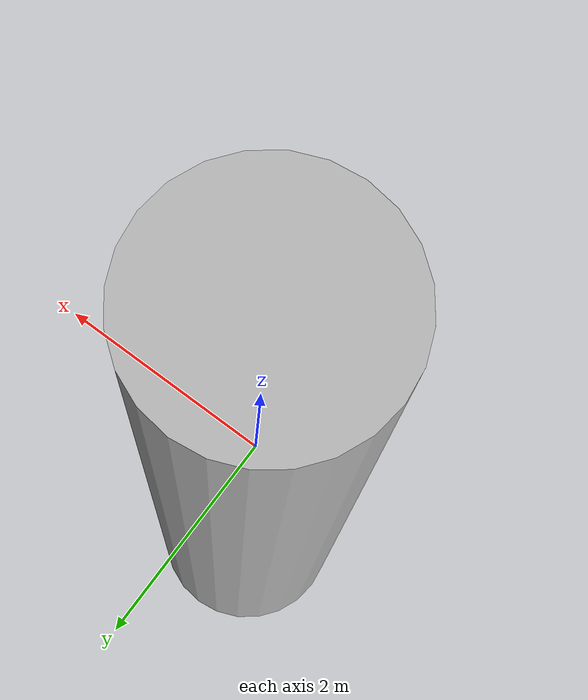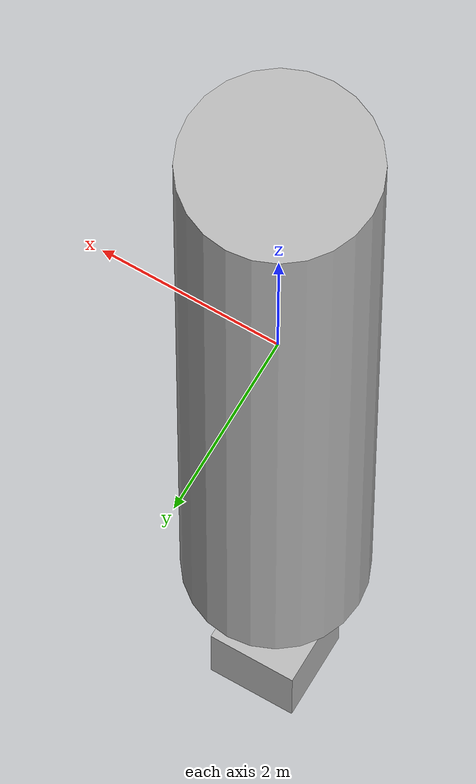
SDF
<sdf version='1.10'>
  <world name='world0'>
    <gravity>0 0 0</gravity>
    <magnetic_field>5.5644999999999998e-06 2.2875799999999999e-05 -4.2388400000000002e-05</magnetic_field>
    <wind>
      <linear_velocity>0 0 0</linear_velocity>
    </wind>
    <physics name='1ms' default='false' type='ignored'>
      <max_step_size>0.001</max_step_size>
      <real_time_factor>1</real_time_factor>
      <max_contacts>20</max_contacts>
    </physics>
    <gui fullscreen="0">
      <plugin filename="MinimalScene" name="3D View">
        <gz-gui>
          <title>3D View</title>
          <property type="bool" key="showTitleBar">false</property>
          <property type="string" key="state">docked</property>
        </gz-gui>

        <engine>ogre</engine>
        <scene>scene</scene>
        <ambient_light>0 0 0</ambient_light>
        <background_color>0.8 0.8 0.8</background_color>
        <camera_pose>-11.526359 19.527456 24.174088 0 0.559400 -0.989541</camera_pose>
      </plugin>

      <!-- Plugins that add functionality to the scene -->
      <plugin filename="CameraTracking" name="Camera Tracking">
        <gz-gui>
          <property key="resizable" type="bool">false</property>
          <property key="width" type="double">5</property>
          <property key="height" type="double">5</property>
          <property key="state" type="string">floating</property>
          <property key="showTitleBar" type="bool">false</property>
        </gz-gui>
      </plugin>
    </gui>
    <model name='model'>
      <static>false</static>
      <self_collide>false</self_collide>
      <allow_auto_disable>true</allow_auto_disable>
      <enable_wind>false</enable_wind>
      <pose>0 0 0 0 0 0</pose>
      <link name='root'>
        <pose>0 0 -0.72727272727272729 0 0 0</pose>
        <inertial>
          <pose>0 0 0 0 0 0</pose>
          <mass>1</mass>
          <inertia>
            <ixx>1</ixx>
            <ixy>0</ixy>
            <ixz>0</ixz>
            <iyy>1</iyy>
            <iyz>0</iyz>
            <izz>1</izz>
          </inertia>
        </inertial>
        <enable_wind>false</enable_wind>
        <visual name='visual_box'>
          <pose>0 0 0 0 0 0</pose>
          <geometry>
            <cylinder>
              <radius>1</radius>
              <length>10</length>
            </cylinder>
          </geometry>
          <cast_shadows>true</cast_shadows>
          <laser_retro>0</laser_retro>
          <transparency>0</transparency>
          <visibility_flags>4294967295</visibility_flags>
        </visual>
      </link>
      <link name='root.RigidBodyLinkType.RIGID_SolidSpecType.BOX'>
        <pose>0 0 -8 0 0 0</pose>
        <inertial>
          <pose>0 0 0 0 0 0</pose>
          <mass>1</mass>
          <inertia>
            <ixx>1</ixx>
            <ixy>0</ixy>
            <ixz>0</ixz>
            <iyy>1</iyy>
            <iyz>0</iyz>
            <izz>1</izz>
          </inertia>
        </inertial>
        <enable_wind>false</enable_wind>
        <visual name='visual_box'>
          <pose>0 0 0 0 0 0</pose>
          <geometry>
            <box>
              <size>1 1 1</size>
            </box>
          </geometry>
          <cast_shadows>true</cast_shadows>
          <laser_retro>0</laser_retro>
          <transparency>0</transparency>
          <visibility_flags>4294967295</visibility_flags>
        </visual>
      </link>
      <joint name='joint' type='fixed'>
        <parent>root</parent>
        <child>root.RigidBodyLinkType.RIGID_SolidSpecType.BOX</child>
      </joint>
    </model>
    <atmosphere type='adiabatic'>
      <temperature>288.14999999999998</temperature>
      <pressure>101325</pressure>
      <temperature_gradient>-0.0064999999999999997</temperature_gradient>
    </atmosphere>
    <scene>
      <ambient>0.400000006 0.400000006 0.400000006 1</ambient>
      <background>0.699999988 0.699999988 0.699999988 1</background>
      <grid>true</grid>
      <origin_visual>true</origin_visual>
      <shadows>true</shadows>
    </scene>
  </world>
</sdf>
